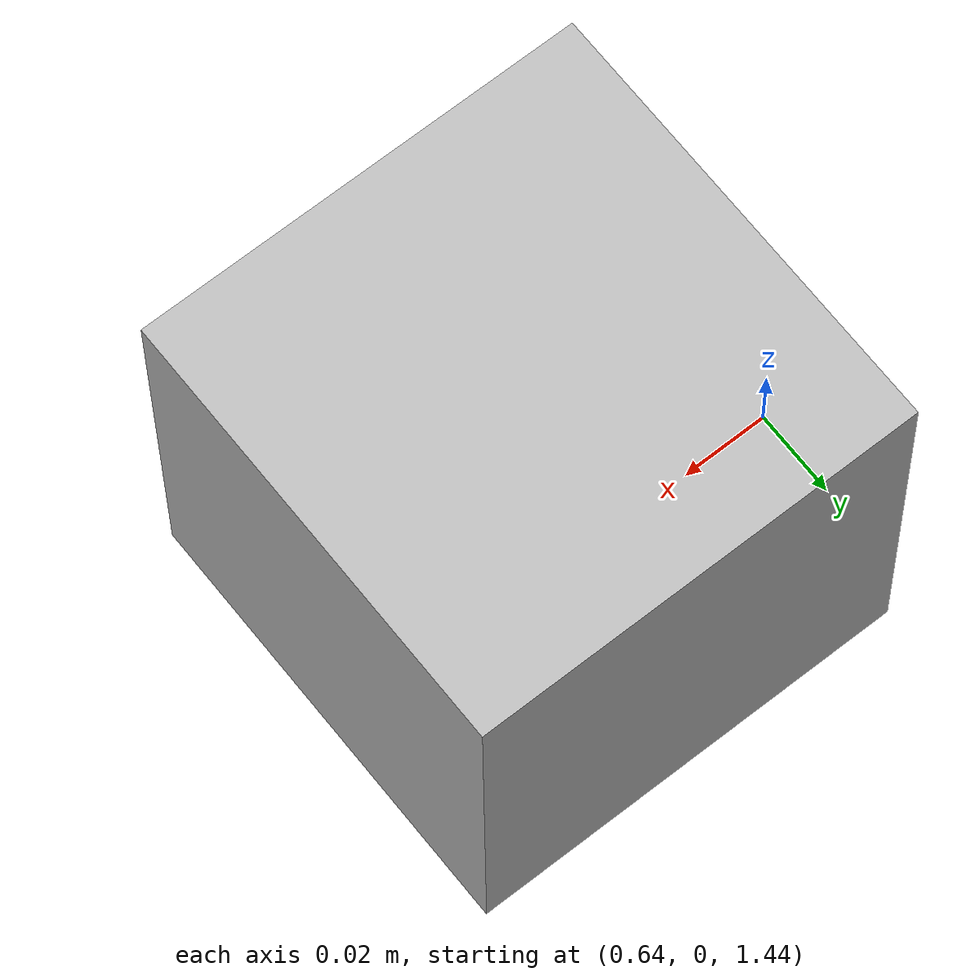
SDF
<?xml version="1.0" ?>
<sdf version="1.9">
  <world name="world_model">
    <physics name="1ms" type="ignored">
      <max_step_size>0.001</max_step_size>
      <real_time_factor>1.0</real_time_factor>
    </physics>
    <plugin
      filename="ignition-gazebo-physics-system"
      name="gz::sim::systems::Physics">
    </plugin>
    <plugin
      filename="ignition-gazebo-user-commands-system"
      name="gz::sim::systems::UserCommands">
    </plugin>
    <plugin
      filename="ignition-gazebo-sensors-system"
      name="gz::sim::systems::Sensors">
      <render_engine>ogre2</render_engine>
    </plugin>
    <plugin
      filename="ignition-gazebo-scene-broadcaster-system"
      name="gz::sim::systems::SceneBroadcaster">
    </plugin>

    <light type="directional" name="sun">
      <cast_shadows>false</cast_shadows>
      <pose>0 0 10 0 0 0</pose>
      <diffuse>1 1 1 1</diffuse>
      <specular>0.5 0.5 0.5 1</specular>
      <attenuation>
        <range>1000</range>
        <constant>0.9</constant>
        <linear>0.01</linear>
        <quadratic>0.001</quadratic>
      </attenuation>
      <direction>-0.5 0.1 -0.9</direction>
    </light>

    <model name="ground_plane">
      <static>true</static>
      <link name="link">
        <collision name="collision">
          <geometry>
            <plane>
              <normal>0 0 1</normal>
              <size>100 100</size>
            </plane>
          </geometry>
        </collision>
        <visual name="visual">
          <geometry>
            <plane>
              <normal>0 0 1</normal>
              <size>100 100</size>
            </plane>
          </geometry>
          <material>
            <ambient>0.8 0.8 0.8 1</ambient>
            <diffuse>0.8 0.8 0.8 1</diffuse>
            <specular>0.8 0.8 0.8 1</specular>
          </material>
        </visual>
      </link>
    </model>

    <model name="camera_model">
      <pose>0.7 0 1.5 0 1.57 3.1415</pose> <!-- Positioned above the table, looking straight down -->
      <link name="camera_rgb_frame">
        <pose>0.0 0.0 0.0 0 0 0</pose>
        <inertial>
          <mass>0.1</mass>
          <inertia>
            <ixx>0.000166667</ixx>
            <iyy>0.000166667</iyy>
            <izz>0.000166667</izz>
          </inertia>
        </inertial>
        <collision name="collision">
          <geometry>
            <box>
              <size>0.1 0.1 0.1</size>
            </box>
          </geometry>
        </collision>
        <visual name="visual">
          <geometry>
            <box>
              <size>0.1 0.1 0.1</size>
            </box>
          </geometry>
        </visual>

        <!-- RGB Camera -->
        <sensor name="rgb_camera" type="camera">
          <update_rate>10</update_rate>
          <topic>rgb_camera</topic>
          <camera>
            <horizontal_fov>1.05</horizontal_fov>
            <image>
              <width>640</width>
              <height>480</height>
              <format>R8G8B8</format>
            </image>
            <clip>
              <near>0.1</near>
              <far>10.0</far>
            </clip>
          </camera>
        </sensor>
      </link>

      <link name="depth_camera">
        <pose>0.0 0.0 0.0 0 0 0</pose>
        <!-- Depth Camera -->
        <sensor name="depth_camera" type="depth_camera">
          <update_rate>10</update_rate>
          <topic>depth_camera</topic>
          <camera>
            <horizontal_fov>1.05</horizontal_fov>
            <image>
              <width>640</width>
              <height>480</height>
              <format>R_FLOAT32</format>
            </image>
            <clip>
              <near>0.1</near>
              <far>10.0</far>
            </clip>
            <noise>
              <type>gaussian</type>
              <mean>0.0</mean>
              <stddev>0.005</stddev>
            </noise>
          </camera>
        </sensor>
      </link>
      <static>true</static>
    </model>
  </world>
</sdf>
